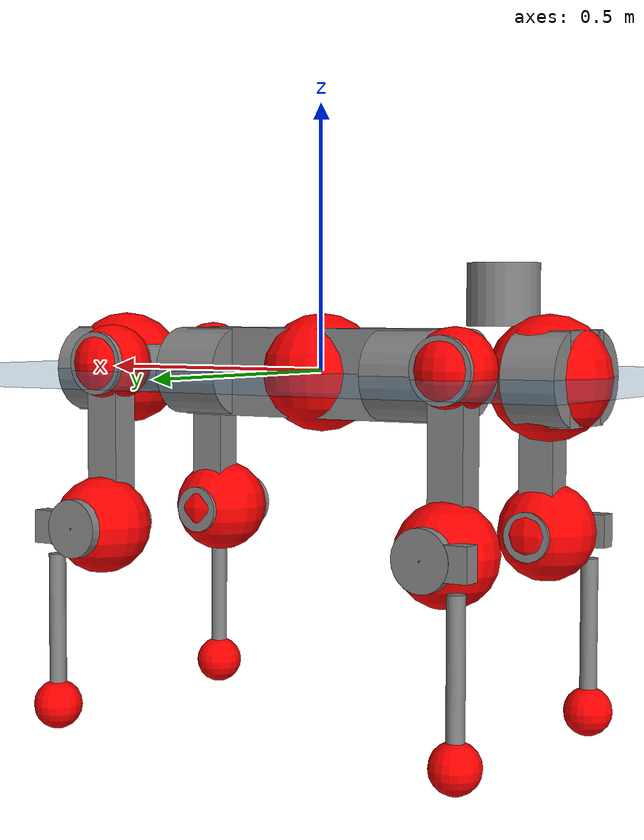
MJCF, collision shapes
<mujoco model="anymal_c">
  <compiler angle="radian" assetdir="assets" balanceinertia="true" inertiafromgeom="false"/>

  <option timestep="0.005" density="1.2" viscosity="2e-05"/>

  <size nkey="1"/>

  <visual>
    <quality shadowsize="8192"/>
    <map shadowclip="0.5"/>
  </visual>

  <default>
    <default class="/">
      <material specular="0" shininess="0.25"/>
      <geom contype="0" conaffinity="0" group="1" solref="-1000 -80"/>
      <site size="0.01 0.005 0.005" group="5"/>
      <general forcelimited="true" forcerange="-80 80" biastype="affine" gainprm="80" biasprm="0 -80 -2"/>
      <default class="anymal_c">
        <joint armature="0.01" damping="0.01" frictionloss="0.1"/>
        <default class="visual">
          <geom type="mesh" group="2"/>
          <default class="visual_zflip"/>
        </default>
        <default class="collision">
          <geom type="cylinder" group="3"/>
          <default class="foot">
            <geom size="0.03 0 0" type="sphere" condim="6" priority="1" friction="0.8 0.02 0.01" solimp="0.015 1 0.03"/>
          </default>
        </default>
      </default>
      <default class="reward_collision_sphere">
        <geom group="5" rgba="1 0 0 1"/>
      </default>
    </default>
  </default>

  <asset>
    <texture type="skybox" colorspace="auto" name="//unnamed_texture_0" builtin="gradient" rgb1="0.95 0.95 0.95" rgb2="0.95 0.95 0.95" width="100" height="600"/>
    <texture type="2d" colorspace="auto" name="texplane" builtin="checker" rgb1="0.345 0.575 0.748" rgb2="0.345 0.575 0.748" markrgb="1 1 1" width="512" height="512"/>
    <texture type="2d" colorspace="linear" name="base" file="base.png"/>
    <texture type="2d" colorspace="linear" name="top_shell" file="top_shell.png"/>
    <texture type="2d" colorspace="linear" name="bottom_shell" file="bottom_shell.png"/>
    <texture type="2d" colorspace="linear" name="remote" file="remote.png"/>
    <texture type="2d" colorspace="linear" name="hatch" file="hatch.png"/>
    <texture type="2d" colorspace="linear" name="handle" file="handle.png"/>
    <texture type="2d" colorspace="linear" name="face" file="face.png"/>
    <texture type="2d" colorspace="linear" name="battery" file="battery.png"/>
    <texture type="2d" colorspace="linear" name="lidar_cage" file="lidar_cage.png"/>
    <texture type="2d" colorspace="linear" name="depth_camera" file="depth_camera.png"/>
    <texture type="2d" colorspace="linear" name="wide_angle_camera" file="wide_angle_camera.png"/>
    <texture type="2d" colorspace="linear" name="lidar" file="lidar.png"/>
    <texture type="2d" colorspace="linear" name="drive" file="drive.png"/>
    <texture type="2d" colorspace="linear" name="hip_l" file="hip_l.png"/>
    <texture type="2d" colorspace="linear" name="shank_l" file="shank_l.png"/>
    <texture type="2d" colorspace="linear" name="foot" file="foot.png"/>
    <texture type="2d" colorspace="linear" name="thigh" file="thigh.png"/>
    <texture type="2d" colorspace="linear" name="shank_r" file="shank_r.png"/>
    <texture type="2d" colorspace="linear" name="hip_r" file="hip_r.png"/>
    <material name="MatPlane" class="/" texture="texplane" texuniform="true" texrepeat="2 2" specular="0.9" shininess="0.5"/>
    <material name="black_plastic" class="/" rgba="0.007 0.007 0.007 1"/>
    <material name="green" class="/" rgba="0.052 0.178 0.033 1"/>
    <material name="red" class="/" rgba="0.178 0.006 0.005 1"/>
    <material name="yellow" class="/" rgba="0.178 0.119 0.006 1"/>
    <material name="lwl" class="/" rgba="0.8 0.8 0.8 1"/>
    <material name="base" class="/" texture="base"/>
    <material name="top_shell" class="/" texture="top_shell"/>
    <material name="bottom_shell" class="/" texture="bottom_shell"/>
    <material name="hip_l" class="/" texture="hip_l"/>
    <material name="thigh" class="/" texture="thigh"/>
    <material name="shank_l" class="/" texture="shank_l"/>
    <material name="foot" class="/" texture="foot"/>
    <material name="hip_r" class="/" texture="hip_r"/>
    <material name="shank" class="/" texture="shank_r"/>
    <material name="hatch" class="/" texture="hatch"/>
    <material name="remote" class="/" texture="remote"/>
    <material name="handle" class="/" texture="handle"/>
    <material name="face" class="/" texture="face"/>
    <material name="depth_camera" class="/" texture="depth_camera"/>
    <material name="wide_angle_camera" class="/" texture="wide_angle_camera"/>
    <material name="battery" class="/" texture="battery"/>
    <material name="lidar_cage" class="/" texture="lidar_cage"/>
    <material name="lidar" class="/" texture="lidar"/>
    <material name="drive" class="/" texture="drive"/>
    <mesh name="base_0" class="/" file="base_0.obj"/>
    <mesh name="base_1" class="/" file="base_1.obj"/>
    <mesh name="base_2" class="/" file="base_2.obj"/>
    <mesh name="base_3" class="/" file="base_3.obj"/>
    <mesh name="base_4" class="/" file="base_4.obj"/>
    <mesh name="base_5" class="/" file="base_5.obj"/>
    <mesh name="top_shell" class="/" file="top_shell.obj"/>
    <mesh name="bottom_shell" class="/" file="bottom_shell.obj"/>
    <mesh name="remote" class="/" file="remote.obj"/>
    <mesh name="handle" class="/" file="handle.obj"/>
    <mesh name="face" class="/" file="face.obj"/>
    <mesh name="wide_angle_camera" class="/" file="wide_angle_camera.obj"/>
    <mesh name="depth_camera" class="/" file="depth_camera.obj"/>
    <mesh name="battery" class="/" file="battery.obj"/>
    <mesh name="lidar_cage" class="/" file="lidar_cage.obj"/>
    <mesh name="lidar" class="/" file="lidar.obj"/>
    <mesh name="drive" class="/" file="drive.obj"/>
    <mesh name="hip_l" class="/" file="hip_l.obj"/>
    <mesh name="thigh" class="/" file="thigh.obj"/>
    <mesh name="shank_l" class="/" file="shank_l.obj"/>
    <mesh name="foot" class="/" file="foot.obj"/>
    <mesh name="hip_r" class="/" file="hip_r.obj"/>
    <mesh name="hatch" class="/" file="hatch.obj"/>
    <mesh name="shank_r" class="/" file="shank_r.obj"/>
  </asset>

  <worldbody>
    <geom name="floor" class="/" size="100 100 0.125" type="plane" group="0" material="MatPlane"/>
    <light name="toplight_shadow" class="/" pos="0 0 5" dir="0.0990148 0.0990148 -0.990148" type="directional" ambient="0.04 0.04 0.04" diffuse="0.55 0.55 0.55" specular="0.12 0.12 0.12"/>
    <light name="toplight_fill" class="/" pos="0 0 5" dir="0.0990148 0.0990148 -0.990148" type="directional" castshadow="false" ambient="0.04 0.04 0.04" diffuse="0.3 0.3 0.3" specular="0.08 0.08 0.08"/>
    <body name="trunk" childclass="anymal_c" pos="-0.00087627 -0.000321595 -0.00264755" quat="1 0.000197456 -7.56849e-05 -0.000244559">
      <inertial pos="0.000203014 -0.00167625 0.0553748" quat="0.499492 0.506763 0.498959 0.494711" mass="15.5835" diaginertia="0.871647 0.0680221 0.334138"/>
      <joint name="//unnamed_joint_0" type="free" armature="0" damping="0" frictionloss="0"/>
      <geom name="//unnamed_geom_1" class="visual" material="green" mesh="base_0"/>
      <geom name="//unnamed_geom_2" class="visual" material="yellow" mesh="base_1"/>
      <geom name="//unnamed_geom_3" class="visual" material="red" mesh="base_2"/>
      <geom name="//unnamed_geom_4" class="visual" material="black_plastic" mesh="base_3"/>
      <geom name="//unnamed_geom_5" class="visual" material="lwl" mesh="base_4"/>
      <geom name="//unnamed_geom_6" class="visual" material="base" mesh="base_5"/>
      <geom name="trunk_1" class="collision" size="0.268313 0.0647652 0.0832695" type="box"/>
      <geom name="trunk_2" class="collision" size="0.0832695 0.0670782" pos="0.228951 0.0446882 0" quat="0.707107 0 0.707107 0"/>
      <geom name="trunk_3" class="collision" size="0.0832695 0.0670782" pos="-0.228951 0.0446882 0" quat="0.707107 0 0.707107 0"/>
      <geom name="trunk_4" class="collision" size="0.0832695 0.0670782" pos="0.228951 -0.0446882 0" quat="0.707107 0 0.707107 0"/>
      <geom name="trunk_5" class="collision" size="0.0832695 0.0670782" pos="-0.228951 -0.0446882 0" quat="0.707107 0 0.707107 0"/>
      <geom name="//unnamed_geom_12" class="visual" material="top_shell" mesh="top_shell"/>
      <geom name="//unnamed_geom_13" class="visual" material="bottom_shell" mesh="bottom_shell"/>
      <geom name="//unnamed_geom_14" class="visual" material="remote" mesh="remote"/>
      <geom name="//unnamed_geom_15" class="visual" material="handle" mesh="handle"/>
      <geom name="//unnamed_geom_16" class="visual" pos="0.436322 0 0" quat="1 0 0 0" material="face" mesh="face"/>
      <geom name="trunk_6" class="collision" size="0.0508869 0.0647652 0.0832695" pos="0.494218 0 0" type="box"/>
      <geom name="//unnamed_geom_18" class="collision" size="0.0832695 0.0508869" pos="0.494218 0.0446882 0" quat="0.707107 0 0.707107 0"/>
      <geom name="//unnamed_geom_19" class="collision" size="0.0832695 0.0508869" pos="0.494218 -0.0446882 0" quat="0.707107 0 0.707107 0"/>
      <geom name="//unnamed_geom_20" class="visual" pos="0.485956 0 -0.0319132" quat="0.965926 0 0.258819 0" material="depth_camera" mesh="depth_camera"/>
      <geom name="//unnamed_geom_21" class="visual" pos="0.540008 0 0.0162365" material="wide_angle_camera" mesh="wide_angle_camera"/>
      <geom name="//unnamed_geom_22" class="visual_zflip" pos="-0.436322 0 0" quat="0 0 0 1" material="face" mesh="face"/>
      <geom name="trunk_7" class="collision" size="0.0508869 0.0647652 0.0832695" pos="-0.494218 0 0" quat="0 0 0 1" type="box"/>
      <geom name="//unnamed_geom_24" class="collision" size="0.0832695 0.0508869" pos="-0.494218 -0.0446882 0" quat="0 -0.707107 0 0.707107"/>
      <geom name="//unnamed_geom_25" class="collision" size="0.0832695 0.0508869" pos="-0.494218 0.0446882 0" quat="0 -0.707107 0 0.707107"/>
      <geom name="//unnamed_geom_26" class="visual" pos="-0.485956 0 -0.0319132" quat="0 -0.258819 0 0.965926" material="depth_camera" mesh="depth_camera"/>
      <geom name="//unnamed_geom_27" class="visual_zflip" pos="-0.540008 0 0.0162365" quat="0 0 0 1" material="wide_angle_camera" mesh="wide_angle_camera"/>
      <geom name="//unnamed_geom_28" class="visual" material="battery" mesh="battery"/>
      <geom name="//unnamed_geom_29" class="visual" pos="0 0.0433779 0.0312648" quat="0.683013 -0.183013 0.183013 0.683013" material="depth_camera" mesh="depth_camera"/>
      <geom name="//unnamed_geom_30" class="visual" pos="0 -0.0433779 0.0312648" quat="0.683013 0.183013 0.183013 -0.683013" material="depth_camera" mesh="depth_camera"/>
      <geom name="//unnamed_geom_31" class="visual" pos="-0.383163 0 0.0797182" quat="1 0 0 0" material="lidar_cage" mesh="lidar_cage"/>
      <geom name="trunk_8" class="collision" size="0.0647652 0.055513" pos="-0.383163 0 0.144794"/>
      <geom name="//unnamed_geom_33" class="visual" pos="-0.383163 -0.000162745 0.15423" quat="0.707107 0 0 -0.707107" material="lidar" mesh="lidar"/>
      <geom name="//unnamed_geom_34" class="visual" pos="0.315689 0.0665524 -7.69697e-09" quat="0.258819 0.965926 0 0" material="drive" mesh="drive"/>
      <geom name="//unnamed_geom_35" class="visual" pos="0.315689 -0.0665524 7.69697e-09" quat="0.258819 -0.965926 0 0" material="drive" mesh="drive"/>
      <geom name="//unnamed_geom_36" class="visual" pos="-0.315689 0.0665524 7.69697e-09" quat="0 0 0.965926 -0.258819" material="drive" mesh="drive"/>
      <geom name="//unnamed_geom_37" class="visual" pos="-0.315689 -0.0665524 -7.69697e-09" quat="0 0 -0.965926 -0.258819" material="drive" mesh="drive"/>
      <geom name="//unnamed_geom_38" class="visual" pos="0.122107 0 0.0791759" quat="1 0 0 0" material="hatch" mesh="hatch"/>
      <geom name="//unnamed_geom_39" class="reward_collision_sphere" size="0.111026"/>
      <geom name="//unnamed_geom_40" class="reward_collision_sphere" size="0.111026" pos="0.473691 0 0"/>
      <geom name="//unnamed_geom_41" class="reward_collision_sphere" size="0.111026" pos="-0.473691 0 0"/>
      <site name="imu" pos="0.260206 0.00677002 0.0583251" size="0.00925217"/>
      <camera name="track" pos="0 -1.27681 0" quat="0.707107 0.707107 0 0" mode="trackcom"/>
      <camera name="ego_camera" pos="0.473691 0 -0.043384" quat="-0.5 -0.5 0.5 0.5"/>
      <body name="LF_HIP" pos="0.316221 0.0657325 -0.000245431" quat="0.257612 0.966248 0.000219314 -0.000751515">
        <inertial pos="0.0611628 -0.0122219 -0.00766361" quat="-0.136892 0.712712 -0.125131 0.676494" mass="2.1928" diaginertia="0.00755761 0.000528735 0.00512057"/>
        <joint name="LF_HAA" pos="0 0 0" axis="0.9999 -0.00492992 0.0132865" range="-0.69947 0.543848" armature="0.00969368" damping="0.00756487" frictionloss="0.0908966"/>
        <geom name="//unnamed_geom_42" class="visual" pos="0 -0.000452778 7.43684e-05" quat="0.258819 -0.965926 0 0" material="hip_l" mesh="hip_l"/>
        <geom name="//unnamed_geom_43" class="visual" pos="0.0630536 -0.0711072 -0.0443541" quat="0.183013 -0.683013 0.683013 0.183013" material="drive" mesh="drive"/>
        <geom name="//unnamed_geom_44" class="collision" size="0.0462609 0.0647652" pos="0.0630535 -0.00763517 -0.00748917" quat="-0.353553 -0.612372 0.612372 -0.353553"/>
        <body name="LF_THIGH" pos="0.0639548 -0.0474606 -0.0451021" quat="0.182622 -0.683458 0.682809 0.182499">
          <inertial pos="0.035423 -0.00017772 -0.265105" quat="0.992812 0.000952981 -0.0847798 0.0844733" mass="2.4854" diaginertia="0.0379662 0.00312349 0.006183"/>
          <joint name="LF_HFE" pos="0 0 0" axis="0.99999 -0.00284011 -0.00341394" stiffness="0.0056251" range="-3.17448 3.14624" armature="0.00928537" damping="0" frictionloss="0.0850247"/>
          <geom name="//unnamed_geom_45" class="visual" pos="0.00824182 1.29872e-05 0" quat="0.707107 0 0 -0.707107" material="thigh" mesh="thigh"/>
          <geom name="//unnamed_geom_46" class="collision" size="0.0601391 0.0370087" pos="0.0421059 0 0" quat="0.5 0.5 -0.5 -0.5"/>
          <geom name="//unnamed_geom_47" class="collision" size="0.0346956 0.0277565 0.130746" pos="0.0315794 0 -0.153269" quat="0.707107 0 0 -0.707107" type="box"/>
          <geom name="//unnamed_geom_48" class="visual" pos="0.10558 0 -0.309111" quat="1 0 0 0" material="drive" mesh="drive"/>
          <geom name="//unnamed_geom_49" class="collision" size="0.0462609 0.0647652" pos="0.0318952 0 -0.309111" quat="0.707107 0 0.707107 0"/>
          <geom name="//unnamed_geom_50" class="reward_collision_sphere" size="0.0740174" pos="0.0263162 0 0"/>
          <body name="LF_SHANK" pos="0.108205 -0.00240193 -0.309727" quat="0.999999 4.40325e-05 -0.00083674 -0.00072382">
            <inertial pos="0.00489986 -0.0391967 -0.0885999" quat="0.992538 -0.119822 -0.00478412 -0.0221021" mass="0.454909" diaginertia="0.012694 0.00097725 0.00160466"/>
            <joint name="LF_KFE" pos="0 0 0" axis="0.99996 0.00721187 0.00532958" range="-3.19474 3.18377" armature="0.0105341" damping="0" frictionloss="0.105395"/>
            <geom name="//unnamed_geom_51" class="visual" pos="0.00268748 0.0143298 0" quat="0.707107 0 0 -0.707107" material="shank_l" mesh="shank_l"/>
            <geom name="LF_kfe_act" class="collision" size="0.055513 0.0185043" pos="0.0210529 0 0" quat="0.5 0.5 -0.5 -0.5"/>
            <geom name="//unnamed_geom_53" class="collision" size="0.0531991 0.0312261 0.0175791" pos="0.0210529 -0.0367075 0" quat="0.5 0.5 -0.5 -0.5" type="box"/>
            <geom name="//unnamed_geom_54" class="visual" pos="0.0137364 -0.0515297 -0.366563" quat="0.382683 0 0 -0.92388" material="foot" mesh="foot"/>
            <geom name="LF_calf" class="collision" size="0.0161913 0.130689" pos="0.013737 -0.0561476 -0.183281" quat="0.707107 0 0 -0.707107"/>
            <geom name="LF_foot" class="foot" size="0.0255825" pos="0.013737 -0.0561476 -0.342159" quat="0.707107 0 0 -0.707107"/>
            <geom name="//unnamed_geom_57" class="reward_collision_sphere" size="0.0925217" pos="-0.0526323 0 0"/>
            <geom name="//unnamed_geom_58" class="reward_collision_sphere" size="0.0462609" pos="0.013737 -0.0561476 -0.342159"/>
            <site name="LF_foot" class="foot" pos="0.013737 -0.0561476 -0.342159" quat="0.707107 0 0 -0.707107" size="0.00925217"/>
          </body>
        </body>
      </body>
      <body name="RF_HIP" pos="0.313502 -0.0657084 -0.00156837" quat="0.259081 -0.965855 -0.000185831 -0.000949427">
        <inertial pos="0.0614509 0.0111935 -0.0101081" quat="0.134361 0.678787 0.128322 0.710443" mass="2.24464" diaginertia="0.00758205 0.000559067 0.00510058"/>
        <joint name="RF_HAA" pos="0 0 0" axis="0.999912 0.00750884 0.0109267" range="-0.518821 0.722418" armature="0.00853738" damping="0.0103974" frictionloss="0.0853223"/>
        <geom name="//unnamed_geom_59" class="visual" pos="0 0.000452774 7.43682e-05" quat="0.258819 0.965926 0 0" material="hip_r" mesh="hip_r"/>
        <geom name="//unnamed_geom_60" class="visual" pos="0.0630535 0.0711072 -0.0443541" quat="0.183013 0.683013 0.683013 -0.183013" material="drive" mesh="drive"/>
        <geom name="//unnamed_geom_61" class="collision" size="0.0462609 0.0647652" pos="0.0630535 0.00763517 -0.00748917" quat="-0.353553 0.612372 0.612372 0.353553"/>
        <body name="RF_THIGH" pos="0.0609152 0.0472618 -0.0483074" quat="0.182756 0.6828 0.683113 -0.183686">
          <inertial pos="0.032338 -0.000116384 -0.265386" quat="0.992273 -0.00630401 -0.08914 0.0860737" mass="2.33054" diaginertia="0.0375439 0.00318295 0.00629883"/>
          <joint name="RF_HFE" pos="0 0 0" axis="0.99998 -0.00479252 0.00400525" stiffness="0.00812276" range="-3.13354 3.1956" armature="0.00948863" damping="0" frictionloss="0.0908974"/>
          <geom name="//unnamed_geom_62" class="visual" pos="0.00824182 1.29872e-05 0" quat="0.707107 0 0 -0.707107" material="thigh" mesh="thigh"/>
          <geom name="//unnamed_geom_63" class="collision" size="0.0601391 0.0370087" pos="0.0421059 0 0" quat="0.5 0.5 0.5 0.5"/>
          <geom name="//unnamed_geom_64" class="collision" size="0.0346956 0.0277565 0.130746" pos="0.0315794 0 -0.153269" quat="0.707107 0 0 0.707107" type="box"/>
          <geom name="//unnamed_geom_65" class="visual" pos="0.10558 0 -0.309111" quat="1 0 0 0" material="drive" mesh="drive"/>
          <geom name="//unnamed_geom_66" class="collision" size="0.0462609 0.0647652" pos="0.0318952 0 -0.309111" quat="0.707107 0 0.707107 0"/>
          <geom name="//unnamed_geom_67" class="reward_collision_sphere" size="0.0740174" pos="0.0263162 0 0"/>
          <body name="RF_SHANK" pos="0.10644 -0.000838536 -0.306333" quat="1 -0.000283084 0.000461748 0.000265629">
            <inertial pos="0.00577441 0.0401624 -0.0861759" quat="0.991286 0.128531 0.00428709 0.0285336" mass="0.46651" diaginertia="0.0130461 0.000952623 0.00165819"/>
            <joint name="RF_KFE" pos="0 0 0" axis="0.999884 0.00352514 0.0147838" range="-3.19083 3.19198" armature="0.00841292" damping="0.00558165" frictionloss="0.0891311"/>
            <geom name="//unnamed_geom_68" class="visual" pos="0.00268746 -0.0143297 0" quat="0.707107 0 0 0.707107" material="shank" mesh="shank_r"/>
            <geom name="RF_kfe_act" class="collision" size="0.055513 0.0185043" pos="0.0210529 0 0" quat="0.5 0.5 0.5 0.5"/>
            <geom name="//unnamed_geom_70" class="collision" size="0.0531991 0.0312261 0.0175791" pos="0.0210529 0.0367075 0" quat="0.5 0.5 0.5 0.5" type="box"/>
            <geom name="//unnamed_geom_71" class="visual" pos="0.0137377 0.0515297 -0.366563" quat="0.382683 0 0 0.92388" material="foot" mesh="foot"/>
            <geom name="RF_calf" class="collision" size="0.0161913 0.130689" pos="0.013737 0.0561476 -0.183281" quat="0.707107 0 0 0.707107"/>
            <geom name="RF_foot" class="foot" size="0.0284014" pos="0.013737 0.0561476 -0.342159" quat="0.707107 0 0 0.707107"/>
            <geom name="//unnamed_geom_74" class="reward_collision_sphere" size="0.0925217" pos="-0.0526323 0 0"/>
            <geom name="//unnamed_geom_75" class="reward_collision_sphere" size="0.0462609" pos="0.013737 0.0561476 -0.342159"/>
            <site name="RF_foot" class="foot" pos="0.013737 0.0561476 -0.342159" quat="0.707107 0 0 0.707107" size="0.00925217"/>
          </body>
        </body>
      </body>
      <body name="LH_HIP" pos="-0.316048 0.0691597 -0.00106436" quat="0.000627047 0.00020746 0.965833 -0.259166">
        <inertial pos="0.0624208 0.0109373 -0.0101286" quat="0.144381 0.685274 0.130643 0.701774" mass="2.21628" diaginertia="0.00720125 0.00051359 0.00472397"/>
        <joint name="LH_HAA" pos="0 0 0" axis="0.99992 -0.0126138 0.000443083" range="-0.450507 0.728981" armature="0.00848518" damping="0" frictionloss="0.0969825"/>
        <geom name="//unnamed_geom_76" class="visual" pos="0 0.000452774 7.43682e-05" quat="-0.258819 -0.965926 0 0" material="hip_r" mesh="hip_r"/>
        <geom name="//unnamed_geom_77" class="visual" pos="0.0630535 0.0711072 -0.0443541" quat="0.183013 0.683013 0.683013 -0.183013" material="drive" mesh="drive"/>
        <geom name="//unnamed_geom_78" class="collision" size="0.0462609 0.0647652" pos="0.0630535 0.00763517 -0.00748917" quat="-0.353553 0.612372 0.612372 0.353553"/>
        <body name="LH_THIGH" pos="0.0597818 0.0464392 -0.0471332" quat="0.182835 0.683075 0.683005 -0.182986">
          <inertial pos="0.0325788 0.00206781 -0.266177" quat="0.993285 -0.00300241 -0.0777107 0.0856569" mass="2.44583" diaginertia="0.039327 0.00306715 0.00643366"/>
          <joint name="LH_HFE" pos="0 0 0" axis="0.999965 0.0082547 -0.00164448" stiffness="0.00995384" range="-3.13517 3.15323" armature="0.00794924" damping="0" frictionloss="0.102433"/>
          <geom name="//unnamed_geom_79" class="visual" pos="0.00824182 1.29872e-05 0" quat="0.707107 0 0 -0.707107" material="thigh" mesh="thigh"/>
          <geom name="//unnamed_geom_80" class="collision" size="0.0601391 0.0370087" pos="0.0421059 0 0" quat="0.5 0.5 -0.5 -0.5"/>
          <geom name="//unnamed_geom_81" class="collision" size="0.0346956 0.0277565 0.130746" pos="0.0315794 0 -0.153269" quat="0.707107 0 0 -0.707107" type="box"/>
          <geom name="//unnamed_geom_82" class="visual" pos="0.10558 0 -0.309111" quat="1 0 0 0" material="drive" mesh="drive"/>
          <geom name="//unnamed_geom_83" class="collision" size="0.0462609 0.0647652" pos="0.0318952 0 -0.309111" quat="0.707107 0 0.707107 0"/>
          <geom name="//unnamed_geom_84" class="reward_collision_sphere" size="0.0740174" pos="0.0263162 0 0"/>
          <body name="LH_SHANK" pos="0.102604 -0.000840397 -0.312099" quat="0.999999 -0.0011793 0.000780826 -8.59458e-05">
            <inertial pos="0.00567762 0.0392744 -0.0873097" quat="0.992945 0.115599 -0.000319675 0.0263992" mass="0.467267" diaginertia="0.0130315 0.000978021 0.00168216"/>
            <joint name="LH_KFE" pos="0 0 0" axis="0.999853 0.0110507 -0.0131424" range="-3.15183 3.14076" armature="0.00826275" damping="0.0123315" frictionloss="0.105253"/>
            <geom name="//unnamed_geom_85" class="visual" pos="0.00268746 -0.0143297 0" quat="-0.707107 0 0 -0.707107" material="shank" mesh="shank_r"/>
            <geom name="LH_kfe_act" class="collision" size="0.055513 0.0185043" pos="0.0210529 0 0" quat="0.5 0.5 -0.5 -0.5"/>
            <geom name="//unnamed_geom_87" class="collision" size="0.0531991 0.0312261 0.0175791" pos="0.0210529 0.0367075 0" quat="0.5 0.5 -0.5 -0.5" type="box"/>
            <geom name="//unnamed_geom_88" class="visual" pos="0.0137377 0.0515297 -0.366563" quat="-0.382683 0 0 -0.92388" material="foot" mesh="foot"/>
            <geom name="LH_calf" class="collision" size="0.0161913 0.130689" pos="0.013737 0.0561476 -0.183281" quat="0.707107 0 0 -0.707107"/>
            <geom name="LH_foot" class="foot" size="0.0283492" pos="0.013737 0.0561476 -0.342159" quat="0.707107 0 0 -0.707107"/>
            <geom name="//unnamed_geom_91" class="reward_collision_sphere" size="0.0925217" pos="-0.0526323 0 0"/>
            <geom name="//unnamed_geom_92" class="reward_collision_sphere" size="0.0462609" pos="0.013737 0.0561476 -0.342159"/>
            <site name="LH_foot" class="foot" pos="0.013737 0.0561476 -0.342159" quat="0.707107 0 0 -0.707107" size="0.00925217"/>
          </body>
        </body>
      </body>
      <body name="RH_HIP" pos="-0.316356 -0.0683399 -0.00165648" quat="-0.000686896 -0.000640491 -0.966001 -0.258538">
        <inertial pos="0.0584411 -0.009598 -0.00736606" quat="-0.128011 0.713163 -0.139835 0.674877" mass="2.12451" diaginertia="0.00733786 0.000504483 0.00472595"/>
        <joint name="RH_HAA" pos="0 0 0" axis="1 -4.32542e-05 -0.000227007" range="-0.761592 0.501973" armature="0.00900561" damping="0" frictionloss="0.0948919"/>
        <geom name="//unnamed_geom_93" class="visual" pos="0 -0.000452778 7.43684e-05" quat="-0.258819 0.965926 0 0" material="hip_l" mesh="hip_l"/>
        <geom name="//unnamed_geom_94" class="visual" pos="0.0630536 -0.0711072 -0.0443541" quat="-0.183013 0.683013 -0.683013 -0.183013" material="drive" mesh="drive"/>
        <geom name="//unnamed_geom_95" class="collision" size="0.0462609 0.0647652" pos="0.0630535 -0.00763517 -0.00748917" quat="0.353553 0.612372 -0.612372 0.353553"/>
        <body name="RH_THIGH" pos="0.0619496 -0.0492869 -0.0452692" quat="-0.183146 0.682804 -0.683306 -0.182562">
          <inertial pos="0.0353686 -0.00113407 -0.266213" quat="0.993134 -0.00498347 -0.0807496 0.0845007" mass="2.41448" diaginertia="0.0382077 0.003137 0.00634625"/>
          <joint name="RH_HFE" pos="0 0 0" axis="0.999979 -0.00622746 0.00161383" range="-3.15942 3.1575" armature="0.0081053" damping="0" frictionloss="0.0945751"/>
          <geom name="//unnamed_geom_96" class="visual" pos="0.00824182 1.29872e-05 0" quat="0.707107 0 0 -0.707107" material="thigh" mesh="thigh"/>
          <geom name="//unnamed_geom_97" class="collision" size="0.0601391 0.0370087" pos="0.0421059 0 0" quat="0.5 0.5 0.5 0.5"/>
          <geom name="//unnamed_geom_98" class="collision" size="0.0346956 0.0277565 0.130746" pos="0.0315794 0 -0.153269" quat="0.707107 0 0 0.707107" type="box"/>
          <geom name="//unnamed_geom_99" class="visual" pos="0.10558 0 -0.309111" quat="1 0 0 0" material="drive" mesh="drive"/>
          <geom name="//unnamed_geom_100" class="collision" size="0.0462609 0.0647652" pos="0.0318952 0 -0.309111" quat="0.707107 0 0.707107 0"/>
          <geom name="//unnamed_geom_101" class="reward_collision_sphere" size="0.0740174" pos="0.0263162 0 0"/>
          <body name="RH_SHANK" pos="0.104533 -0.000113807 -0.306625" quat="0.999999 0.000660959 0.000367601 -0.00114975">
            <inertial pos="0.00359715 -0.0387811 -0.0884973" quat="0.992944 -0.113395 -0.00372027 -0.0344874" mass="0.45715" diaginertia="0.0125196 0.000992754 0.00164044"/>
            <joint name="RH_KFE" pos="0 0 0" axis="0.99998 0.00414424 -0.00472842" stiffness="0.00808093" range="-3.12288 3.09777" armature="0.00895386" damping="0.015253" frictionloss="0.0933384"/>
            <geom name="//unnamed_geom_102" class="visual" pos="0.00268748 0.0143298 0" quat="0.707107 0 0 -0.707107" material="shank_l" mesh="shank_l"/>
            <geom name="RH_kfe_act" class="collision" size="0.055513 0.0185043" pos="0.0210529 0 0" quat="0.5 0.5 0.5 0.5"/>
            <geom name="//unnamed_geom_104" class="collision" size="0.0531991 0.0312261 0.0175791" pos="0.0210529 -0.0367075 0" quat="0.5 0.5 0.5 0.5" type="box"/>
            <geom name="//unnamed_geom_105" class="visual" pos="0.0137364 -0.0515297 -0.366563" quat="0.382683 0 0 -0.92388" material="foot" mesh="foot"/>
            <geom name="RH_calf" class="collision" size="0.0161913 0.130689" pos="0.013737 -0.0561476 -0.183281" quat="0.707107 0 0 0.707107"/>
            <geom name="RH_foot" class="foot" size="0.0238784" pos="0.013737 -0.0561476 -0.342159" quat="0.707107 0 0 0.707107"/>
            <geom name="//unnamed_geom_108" class="reward_collision_sphere" size="0.0925217" pos="-0.0526323 0 0"/>
            <geom name="//unnamed_geom_109" class="reward_collision_sphere" size="0.0462609" pos="0.013737 -0.0561476 -0.342159"/>
            <site name="RH_foot" class="foot" pos="0.013737 -0.0561476 -0.342159" quat="0.707107 0 0 0.707107" size="0.00925217"/>
          </body>
        </body>
      </body>
    </body>
  </worldbody>

  <contact>
    <pair class="/" geom1="floor" geom2="LF_foot" name="//unnamed_contact_0"/>
    <pair class="/" geom1="floor" geom2="RF_foot" name="//unnamed_contact_1"/>
    <pair class="/" geom1="floor" geom2="LH_foot" name="//unnamed_contact_2"/>
    <pair class="/" geom1="floor" geom2="RH_foot" name="//unnamed_contact_3"/>
  </contact>

  <actuator>
    <general name="LF_HAA" class="/" joint="LF_HAA" forcerange="-75.4567 75.4567" gainprm="68.9692" biasprm="0 -68.9692 -1.73214"/>
    <general name="LF_HFE" class="/" joint="LF_HFE" forcerange="-66.2574 66.2574" gainprm="68.9692" biasprm="0 -68.9692 -1.73214"/>
    <general name="LF_KFE" class="/" joint="LF_KFE" forcerange="-72.3712 72.3712" gainprm="68.9692" biasprm="0 -68.9692 -1.73214"/>
    <general name="RF_HAA" class="/" joint="RF_HAA" forcerange="-67.1616 67.1616" gainprm="68.9692" biasprm="0 -68.9692 -1.73214"/>
    <general name="RF_HFE" class="/" joint="RF_HFE" forcerange="-83.8339 83.8339" gainprm="68.9692" biasprm="0 -68.9692 -1.73214"/>
    <general name="RF_KFE" class="/" joint="RF_KFE" forcerange="-69.2802 69.2802" gainprm="68.9692" biasprm="0 -68.9692 -1.73214"/>
    <general name="LH_HAA" class="/" joint="LH_HAA" forcerange="-74.0698 74.0698" gainprm="68.9692" biasprm="0 -68.9692 -1.73214"/>
    <general name="LH_HFE" class="/" joint="LH_HFE" forcerange="-69.5383 69.5383" gainprm="68.9692" biasprm="0 -68.9692 -1.73214"/>
    <general name="LH_KFE" class="/" joint="LH_KFE" forcerange="-74.3347 74.3347" gainprm="68.9692" biasprm="0 -68.9692 -1.73214"/>
    <general name="RH_HAA" class="/" joint="RH_HAA" forcerange="-69.8265 69.8265" gainprm="68.9692" biasprm="0 -68.9692 -1.73214"/>
    <general name="RH_HFE" class="/" joint="RH_HFE" forcerange="-72.3258 72.3258" gainprm="68.9692" biasprm="0 -68.9692 -1.73214"/>
    <general name="RH_KFE" class="/" joint="RH_KFE" forcerange="-80.0104 80.0104" gainprm="68.9692" biasprm="0 -68.9692 -1.73214"/>
  </actuator>

  <sensor>
    <gyro site="imu" name="imu_angular_velocity"/>
    <velocimeter site="imu" name="imu_linear_velocity"/>
    <framelinvel objtype="site" objname="LF_foot" name="LF_foot_global_linear_velocity"/>
    <framelinvel objtype="site" objname="RF_foot" name="RF_foot_global_linear_velocity"/>
    <framelinvel objtype="site" objname="LH_foot" name="LH_foot_global_linear_velocity"/>
    <framelinvel objtype="site" objname="RH_foot" name="RH_foot_global_linear_velocity"/>
  </sensor>

  <keyframe>
    <key name="home" qpos="0 0 0.55 1 0 0 0 0 0.4 -0.8 0 -0.4 0.8 0 -0.4 0.8 0 0.4 -0.8"/>
  </keyframe>
</mujoco>
